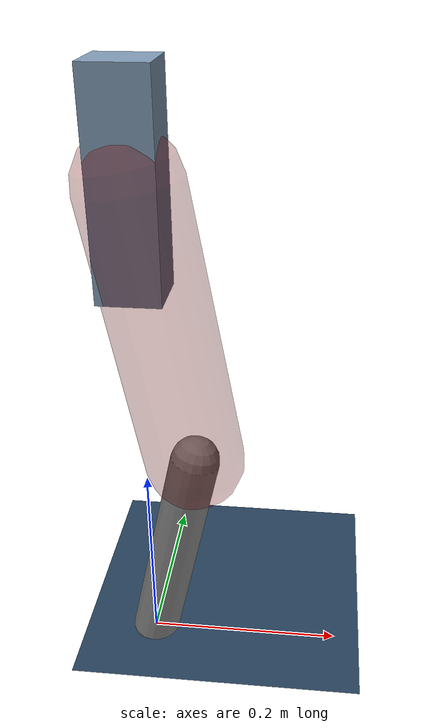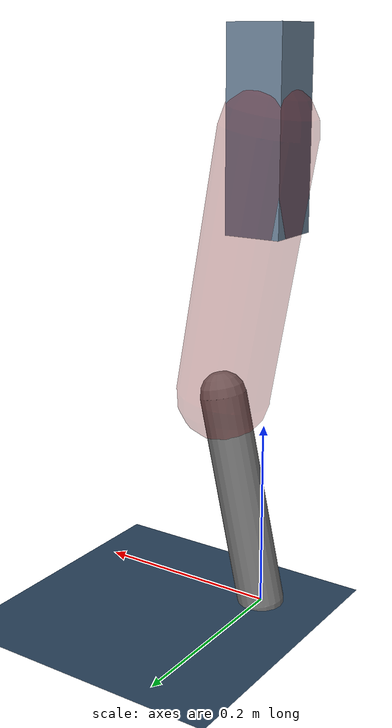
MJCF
<mujoco model="Hopper2D">
	<compiler inertiafromgeom="true" angle="radian" />
	<option timestep="0.001" integrator="implicit" cone="elliptic" solver="Newton" tolerance="1e-10" />

	<default>
		<geom contype="1" conaffinity="1" condim="3" friction="2 0.005 0.0001" solref="0.005 1" />
		<joint limited="true" damping="0.1" />
	</default>

	<asset>
		<texture name="skybox" type="skybox" builtin="gradient" rgb1=".4 .6 .8" rgb2="0 0 0" width="800" height="800" />
		<texture name="grid" type="2d" builtin="checker" rgb1=".1 .2 .3" rgb2=".2 .3 .4" width="300" height="300" mark="edge" markrgb=".2 .3 .4" />
		<material name="ground" texture="grid" texrepeat="1 1" texuniform="true" reflectance="0.1" />
		<material name="leg" rgba="0.5 0.6 0.7 1" />
	</asset>

	<worldbody>

		<geom name="floor" type="plane" size="5 5 0.25" material="ground" />

		<light directional="false" diffuse="0.8 0.8 0.8" specular="0.3 0.3 0.3" pos="0 0 2" dir="0 0 -1" />
		<light mode="targetbodycom" target="base" directional="false" diffuse="0.8 0.8 0.8" specular="0.3 0.3 0.3" pos="0 0 2" dir="0 0 -1" />

		<camera name="fixed" pos="0 -2 1" xyaxes="1 0 0 0 0 1" />
		<camera name="tracking" mode="trackcom" pos="0 -3 1" />

		<body name="root" pos="0 0 0.5014401026917313">
			<joint name="slide_x" type="slide" axis="1 0 0" range="-100 100" />
			<joint name="slide_z" type="slide" axis="0 0 1" range="0 10" />

			<body name="base" pos="0 0 0">
				<geom name="torso" type="box" size="0.03 0.03 0.1" mass="2.159" material="leg" />

				<body name="link1" pos="0 0 0" euler="0 1.3909695948591538 0">
					<joint type="hinge" axis="0 -1 0" pos="0 0 0" name="hinge1" limited="true" range="-3.14 3.14" stiffness="0" damping="0.1" />
					<geom name="thigh" type="capsule" fromto="0 0 0 0.28001971590472907 0 0" size="0.05" rgba="0.5 0 0 0.3" mass="0.9351532329427684" />

					<body name="link2" pos="0.28001971590472907 0 0" euler="0 0.3979731295417052 0">
						<joint type="hinge" axis="0 -1 0" pos="0 0 0" name="hinge2" limited="true" range="-3.14 3.14" stiffness="0" damping="0.1" />
						<geom name="shank" type="capsule" fromto="0 0 0 0.2314203867870023 0 0" size="0.025" mass="0.42713630942960185" />

					</body>
				</body>
			</body>
		</body>
	</worldbody>

	<actuator>
		<motor name="torque1" joint="hinge1" ctrlrange="-75.11795976907713 75.11795976907713" ctrllimited="true" gear="1" />
		<motor name="torque2" joint="hinge2" ctrlrange="-105.83481684239979 105.83481684239979" ctrllimited="true" gear="1" />
	</actuator>
</mujoco>
